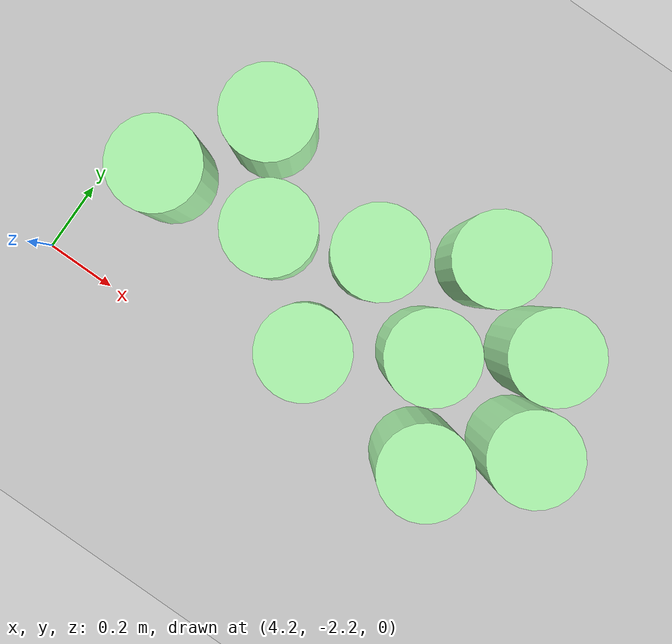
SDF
<sdf version="1.7">
 <world name="default">
  <model name="ground_plane">
   <static>1</static>
   <link name="link">
    <collision name="collision">
     <geometry><plane><normal>0 0 1</normal><size>100 100</size></plane></geometry>
     <surface><friction><ode><mu>100</mu><mu2>50</mu2></ode></friction></surface>
    </collision>
    <visual name="visual">
     <cast_shadows>0</cast_shadows>
     <geometry><plane><normal>0 0 1</normal><size>100 100</size></plane></geometry>
     <material>
      <script><uri>file://media/materials/scripts/gazebo.material</uri><name>Gazebo/Grey</name></script>
     </material>
    </visual>
   </link>
  </model>
  <model name="mhz_y_25_30_clone_29_clone_clone_clone_1_clone_2_clone_8">
   <link name="link">
    <inertial>
     <mass>1</mass>
     <inertia><ixx>0.145833</ixx><ixy>0</ixy><ixz>0</ixz><iyy>0.145833</iyy><iyz>0</iyz><izz>0.125</izz></inertia>
    </inertial>
    <visual name="visual">
     <geometry><cylinder><radius>0.125</radius><length>0.3</length></cylinder></geometry>
     <material>
      <script><name>Gazebo/Grey</name><uri>file://media/materials/scripts/gazebo.material</uri></script>
      <shader type="pixel"><normal_map>__default__</normal_map></shader>
      <ambient>0 1 0 0</ambient>
      <diffuse>0.7 1 0.7 1</diffuse>
      <specular>0.01 0.01 0.01 1</specular>
      <emissive>0 0 0 1</emissive>
     </material>
    </visual>
    <collision name="collision">
     <geometry><cylinder><radius>0.125</radius><length>0.3</length></cylinder></geometry>
     <surface>
      <friction>
       <ode><mu>1</mu><mu2>1</mu2><fdir1>0 0 0</fdir1><slip1>0</slip1><slip2>0</slip2></ode>
       <torsional>
        <coefficient>1</coefficient>
        <patch_radius>0</patch_radius>
        <surface_radius>0</surface_radius>
        <use_patch_radius>1</use_patch_radius>
        <ode><slip>0</slip></ode>
       </torsional>
      </friction>
      <bounce><restitution_coefficient>0</restitution_coefficient><threshold>1e+06</threshold></bounce>
      <contact>
       <collide_without_contact>0</collide_without_contact>
       <collide_without_contact_bitmask>1</collide_without_contact_bitmask>
       <collide_bitmask>1</collide_bitmask>
       <ode>
        <soft_cfm>0</soft_cfm>
        <soft_erp>0.2</soft_erp>
        <kp>1e+13</kp>
        <kd>1</kd>
        <max_vel>0.01</max_vel>
        <min_depth>0</min_depth>
       </ode>
       <bullet>
        <split_impulse>1</split_impulse>
        <split_impulse_penetration_threshold>-0.01</split_impulse_penetration_threshold>
        <soft_cfm>0</soft_cfm>
        <soft_erp>0.2</soft_erp>
        <kp>1e+13</kp>
        <kd>1</kd>
       </bullet>
      </contact>
     </surface>
    </collision>
   </link>
   <static>1</static>
   <pose>4.37547 -1.85 0.14679 0 -0 0</pose>
  </model>
  <model name="mhz_y_25_30_clone_29_clone_clone_clone_1_clone_2_clone_8_clone_0">
   <link name="link">
    <inertial>
     <mass>1</mass>
     <inertia><ixx>0.145833</ixx><ixy>0</ixy><ixz>0</ixz><iyy>0.145833</iyy><iyz>0</iyz><izz>0.125</izz></inertia>
    </inertial>
    <visual name="visual">
     <geometry><cylinder><radius>0.125</radius><length>0.3</length></cylinder></geometry>
     <material>
      <script><name>Gazebo/Grey</name><uri>file://media/materials/scripts/gazebo.material</uri></script>
      <shader type="pixel"><normal_map>__default__</normal_map></shader>
      <ambient>0 1 0 0</ambient>
      <diffuse>0.7 1 0.7 1</diffuse>
      <specular>0.01 0.01 0.01 1</specular>
      <emissive>0 0 0 1</emissive>
     </material>
    </visual>
    <collision name="collision">
     <geometry><cylinder><radius>0.125</radius><length>0.3</length></cylinder></geometry>
     <surface>
      <friction>
       <ode><mu>1</mu><mu2>1</mu2><fdir1>0 0 0</fdir1><slip1>0</slip1><slip2>0</slip2></ode>
       <torsional>
        <coefficient>1</coefficient>
        <patch_radius>0</patch_radius>
        <surface_radius>0</surface_radius>
        <use_patch_radius>1</use_patch_radius>
        <ode><slip>0</slip></ode>
       </torsional>
      </friction>
      <bounce><restitution_coefficient>0</restitution_coefficient><threshold>1e+06</threshold></bounce>
      <contact>
       <collide_without_contact>0</collide_without_contact>
       <collide_without_contact_bitmask>1</collide_without_contact_bitmask>
       <collide_bitmask>1</collide_bitmask>
       <ode>
        <soft_cfm>0</soft_cfm>
        <soft_erp>0.2</soft_erp>
        <kp>1e+13</kp>
        <kd>1</kd>
        <max_vel>0.01</max_vel>
        <min_depth>0</min_depth>
       </ode>
       <bullet>
        <split_impulse>1</split_impulse>
        <split_impulse_penetration_threshold>-0.01</split_impulse_penetration_threshold>
        <soft_cfm>0</soft_cfm>
        <soft_erp>0.2</soft_erp>
        <kp>1e+13</kp>
        <kd>1</kd>
       </bullet>
      </contact>
     </surface>
    </collision>
   </link>
   <static>1</static>
   <pose>4.69976 -1.81749 0.14679 0 -0 0</pose>
  </model>
  <model name="mhz_y_25_30_clone_29_clone_clone_clone_1_clone_2_clone_8_clone_1_clone">
   <link name="link">
    <inertial>
     <mass>1</mass>
     <inertia><ixx>0.145833</ixx><ixy>0</ixy><ixz>0</ixz><iyy>0.145833</iyy><iyz>0</iyz><izz>0.125</izz></inertia>
    </inertial>
    <visual name="visual">
     <geometry><cylinder><radius>0.125</radius><length>0.3</length></cylinder></geometry>
     <material>
      <script><name>Gazebo/Grey</name><uri>file://media/materials/scripts/gazebo.material</uri></script>
      <shader type="pixel"><normal_map>__default__</normal_map></shader>
      <ambient>0 1 0 0</ambient>
      <diffuse>0.7 1 0.7 1</diffuse>
      <specular>0.01 0.01 0.01 1</specular>
      <emissive>0 0 0 1</emissive>
     </material>
    </visual>
    <collision name="collision">
     <geometry><cylinder><radius>0.125</radius><length>0.3</length></cylinder></geometry>
     <surface>
      <friction>
       <ode><mu>1</mu><mu2>1</mu2><fdir1>0 0 0</fdir1><slip1>0</slip1><slip2>0</slip2></ode>
       <torsional>
        <coefficient>1</coefficient>
        <patch_radius>0</patch_radius>
        <surface_radius>0</surface_radius>
        <use_patch_radius>1</use_patch_radius>
        <ode><slip>0</slip></ode>
       </torsional>
      </friction>
      <bounce><restitution_coefficient>0</restitution_coefficient><threshold>1e+06</threshold></bounce>
      <contact>
       <collide_without_contact>0</collide_without_contact>
       <collide_without_contact_bitmask>1</collide_without_contact_bitmask>
       <collide_bitmask>1</collide_bitmask>
       <ode>
        <soft_cfm>0</soft_cfm>
        <soft_erp>0.2</soft_erp>
        <kp>1e+13</kp>
        <kd>1</kd>
        <max_vel>0.01</max_vel>
        <min_depth>0</min_depth>
       </ode>
       <bullet>
        <split_impulse>1</split_impulse>
        <split_impulse_penetration_threshold>-0.01</split_impulse_penetration_threshold>
        <soft_cfm>0</soft_cfm>
        <soft_erp>0.2</soft_erp>
        <kp>1e+13</kp>
        <kd>1</kd>
       </bullet>
      </contact>
     </surface>
    </collision>
   </link>
   <static>1</static>
   <pose>4.94595 -2.02138 0.14679 0 -0 0</pose>
  </model>
  <model name="mhz_y_25_30_clone_29_clone_clone_clone_1_clone_2_clone_8_clone_1_clone_0">
   <link name="link">
    <inertial>
     <mass>1</mass>
     <inertia><ixx>0.145833</ixx><ixy>0</ixy><ixz>0</ixz><iyy>0.145833</iyy><iyz>0</iyz><izz>0.125</izz></inertia>
    </inertial>
    <visual name="visual">
     <geometry><cylinder><radius>0.125</radius><length>0.3</length></cylinder></geometry>
     <material>
      <script><name>Gazebo/Grey</name><uri>file://media/materials/scripts/gazebo.material</uri></script>
      <shader type="pixel"><normal_map>__default__</normal_map></shader>
      <ambient>0 1 0 0</ambient>
      <diffuse>0.7 1 0.7 1</diffuse>
      <specular>0.01 0.01 0.01 1</specular>
      <emissive>0 0 0 1</emissive>
     </material>
    </visual>
    <collision name="collision">
     <geometry><cylinder><radius>0.125</radius><length>0.3</length></cylinder></geometry>
     <surface>
      <friction>
       <ode><mu>1</mu><mu2>1</mu2><fdir1>0 0 0</fdir1><slip1>0</slip1><slip2>0</slip2></ode>
       <torsional>
        <coefficient>1</coefficient>
        <patch_radius>0</patch_radius>
        <surface_radius>0</surface_radius>
        <use_patch_radius>1</use_patch_radius>
        <ode><slip>0</slip></ode>
       </torsional>
      </friction>
      <bounce><restitution_coefficient>0</restitution_coefficient><threshold>1e+06</threshold></bounce>
      <contact>
       <collide_without_contact>0</collide_without_contact>
       <collide_without_contact_bitmask>1</collide_without_contact_bitmask>
       <collide_bitmask>1</collide_bitmask>
       <ode>
        <soft_cfm>0</soft_cfm>
        <soft_erp>0.2</soft_erp>
        <kp>1e+13</kp>
        <kd>1</kd>
        <max_vel>0.01</max_vel>
        <min_depth>0</min_depth>
       </ode>
       <bullet>
        <split_impulse>1</split_impulse>
        <split_impulse_penetration_threshold>-0.01</split_impulse_penetration_threshold>
        <soft_cfm>0</soft_cfm>
        <soft_erp>0.2</soft_erp>
        <kp>1e+13</kp>
        <kd>1</kd>
       </bullet>
      </contact>
     </surface>
    </collision>
   </link>
   <static>1</static>
   <pose>4.95977 -1.70879 0.14679 0 -0 0</pose>
  </model>
  <model name="mhz_y_25_30_clone_29_clone_clone_clone_1_clone_2_clone_8_clone_0_clone">
   <link name="link">
    <inertial>
     <mass>1</mass>
     <inertia><ixx>0.145833</ixx><ixy>0</ixy><ixz>0</ixz><iyy>0.145833</iyy><iyz>0</iyz><izz>0.125</izz></inertia>
    </inertial>
    <visual name="visual">
     <geometry><cylinder><radius>0.125</radius><length>0.3</length></cylinder></geometry>
     <material>
      <script><name>Gazebo/Grey</name><uri>file://media/materials/scripts/gazebo.material</uri></script>
      <shader type="pixel"><normal_map>__default__</normal_map></shader>
      <ambient>0 1 0 0</ambient>
      <diffuse>0.7 1 0.7 1</diffuse>
      <specular>0.01 0.01 0.01 1</specular>
      <emissive>0 0 0 1</emissive>
     </material>
    </visual>
    <collision name="collision">
     <geometry><cylinder><radius>0.125</radius><length>0.3</length></cylinder></geometry>
     <surface>
      <friction>
       <ode><mu>1</mu><mu2>1</mu2><fdir1>0 0 0</fdir1><slip1>0</slip1><slip2>0</slip2></ode>
       <torsional>
        <coefficient>1</coefficient>
        <patch_radius>0</patch_radius>
        <surface_radius>0</surface_radius>
        <use_patch_radius>1</use_patch_radius>
        <ode><slip>0</slip></ode>
       </torsional>
      </friction>
      <bounce><restitution_coefficient>0</restitution_coefficient><threshold>1e+06</threshold></bounce>
      <contact>
       <collide_without_contact>0</collide_without_contact>
       <collide_without_contact_bitmask>1</collide_without_contact_bitmask>
       <collide_bitmask>1</collide_bitmask>
       <ode>
        <soft_cfm>0</soft_cfm>
        <soft_erp>0.2</soft_erp>
        <kp>1e+13</kp>
        <kd>1</kd>
        <max_vel>0.01</max_vel>
        <min_depth>0</min_depth>
       </ode>
       <bullet>
        <split_impulse>1</split_impulse>
        <split_impulse_penetration_threshold>-0.01</split_impulse_penetration_threshold>
        <soft_cfm>0</soft_cfm>
        <soft_erp>0.2</soft_erp>
        <kp>1e+13</kp>
        <kd>1</kd>
       </bullet>
      </contact>
     </surface>
    </collision>
   </link>
   <static>1</static>
   <pose>4.53461 -1.5845 0.14679 0 -0 0</pose>
  </model>
  <model name="mhz_y_25_30_clone_29_clone_clone_clone_1_clone_2_clone_8_clone_clone_clone">
   <link name="link">
    <inertial>
     <mass>1</mass>
     <inertia><ixx>0.145833</ixx><ixy>0</ixy><ixz>0</ixz><iyy>0.145833</iyy><iyz>0</iyz><izz>0.125</izz></inertia>
    </inertial>
    <visual name="visual">
     <geometry><cylinder><radius>0.125</radius><length>0.3</length></cylinder></geometry>
     <material>
      <script><name>Gazebo/Grey</name><uri>file://media/materials/scripts/gazebo.material</uri></script>
      <shader type="pixel"><normal_map>__default__</normal_map></shader>
      <ambient>0 1 0 0</ambient>
      <diffuse>0.7 1 0.7 1</diffuse>
      <specular>0.01 0.01 0.01 1</specular>
      <emissive>0 0 0 1</emissive>
     </material>
    </visual>
    <collision name="collision">
     <geometry><cylinder><radius>0.125</radius><length>0.3</length></cylinder></geometry>
     <surface>
      <friction>
       <ode><mu>1</mu><mu2>1</mu2><fdir1>0 0 0</fdir1><slip1>0</slip1><slip2>0</slip2></ode>
       <torsional>
        <coefficient>1</coefficient>
        <patch_radius>0</patch_radius>
        <surface_radius>0</surface_radius>
        <use_patch_radius>1</use_patch_radius>
        <ode><slip>0</slip></ode>
       </torsional>
      </friction>
      <bounce><restitution_coefficient>0</restitution_coefficient><threshold>1e+06</threshold></bounce>
      <contact>
       <collide_without_contact>0</collide_without_contact>
       <collide_without_contact_bitmask>1</collide_without_contact_bitmask>
       <collide_bitmask>1</collide_bitmask>
       <ode>
        <soft_cfm>0</soft_cfm>
        <soft_erp>0.2</soft_erp>
        <kp>1e+13</kp>
        <kd>1</kd>
        <max_vel>0.01</max_vel>
        <min_depth>0</min_depth>
       </ode>
       <bullet>
        <split_impulse>1</split_impulse>
        <split_impulse_penetration_threshold>-0.01</split_impulse_penetration_threshold>
        <soft_cfm>0</soft_cfm>
        <soft_erp>0.2</soft_erp>
        <kp>1e+13</kp>
        <kd>1</kd>
       </bullet>
      </contact>
     </surface>
    </collision>
   </link>
   <static>1</static>
   <pose>5.21703 -1.84701 0.14679 0 -0 0</pose>
  </model>
  <model name="mhz_y_25_30_clone_29_clone_clone_clone_1_clone_2_clone_8_clone_clone_clone_0">
   <link name="link">
    <inertial>
     <mass>1</mass>
     <inertia><ixx>0.145833</ixx><ixy>0</ixy><ixz>0</ixz><iyy>0.145833</iyy><iyz>0</iyz><izz>0.125</izz></inertia>
    </inertial>
    <visual name="visual">
     <geometry><cylinder><radius>0.125</radius><length>0.3</length></cylinder></geometry>
     <material>
      <script><name>Gazebo/Grey</name><uri>file://media/materials/scripts/gazebo.material</uri></script>
      <shader type="pixel"><normal_map>__default__</normal_map></shader>
      <ambient>0 1 0 0</ambient>
      <diffuse>0.7 1 0.7 1</diffuse>
      <specular>0.01 0.01 0.01 1</specular>
      <emissive>0 0 0 1</emissive>
     </material>
    </visual>
    <collision name="collision">
     <geometry><cylinder><radius>0.125</radius><length>0.3</length></cylinder></geometry>
     <surface>
      <friction>
       <ode><mu>1</mu><mu2>1</mu2><fdir1>0 0 0</fdir1><slip1>0</slip1><slip2>0</slip2></ode>
       <torsional>
        <coefficient>1</coefficient>
        <patch_radius>0</patch_radius>
        <surface_radius>0</surface_radius>
        <use_patch_radius>1</use_patch_radius>
        <ode><slip>0</slip></ode>
       </torsional>
      </friction>
      <bounce><restitution_coefficient>0</restitution_coefficient><threshold>1e+06</threshold></bounce>
      <contact>
       <collide_without_contact>0</collide_without_contact>
       <collide_without_contact_bitmask>1</collide_without_contact_bitmask>
       <collide_bitmask>1</collide_bitmask>
       <ode>
        <soft_cfm>0</soft_cfm>
        <soft_erp>0.2</soft_erp>
        <kp>1e+13</kp>
        <kd>1</kd>
        <max_vel>0.01</max_vel>
        <min_depth>0</min_depth>
       </ode>
       <bullet>
        <split_impulse>1</split_impulse>
        <split_impulse_penetration_threshold>-0.01</split_impulse_penetration_threshold>
        <soft_cfm>0</soft_cfm>
        <soft_erp>0.2</soft_erp>
        <kp>1e+13</kp>
        <kd>1</kd>
       </bullet>
      </contact>
     </surface>
    </collision>
   </link>
   <static>1</static>
   <pose>5.36451 -2.09111 0.14679 0 -0 0</pose>
  </model>
  <model name="mhz_y_25_30_clone_29_clone_clone_clone_1_clone_2_clone_8_clone_clone_clone_0_clone">
   <link name="link">
    <inertial>
     <mass>1</mass>
     <inertia><ixx>0.145833</ixx><ixy>0</ixy><ixz>0</ixz><iyy>0.145833</iyy><iyz>0</iyz><izz>0.125</izz></inertia>
    </inertial>
    <visual name="visual">
     <geometry><cylinder><radius>0.125</radius><length>0.3</length></cylinder></geometry>
     <material>
      <script><name>Gazebo/Grey</name><uri>file://media/materials/scripts/gazebo.material</uri></script>
      <shader type="pixel"><normal_map>__default__</normal_map></shader>
      <ambient>0 1 0 0</ambient>
      <diffuse>0.7 1 0.7 1</diffuse>
      <specular>0.01 0.01 0.01 1</specular>
      <emissive>0 0 0 1</emissive>
     </material>
    </visual>
    <collision name="collision">
     <geometry><cylinder><radius>0.125</radius><length>0.3</length></cylinder></geometry>
     <surface>
      <friction>
       <ode><mu>1</mu><mu2>1</mu2><fdir1>0 0 0</fdir1><slip1>0</slip1><slip2>0</slip2></ode>
       <torsional>
        <coefficient>1</coefficient>
        <patch_radius>0</patch_radius>
        <surface_radius>0</surface_radius>
        <use_patch_radius>1</use_patch_radius>
        <ode><slip>0</slip></ode>
       </torsional>
      </friction>
      <bounce><restitution_coefficient>0</restitution_coefficient><threshold>1e+06</threshold></bounce>
      <contact>
       <collide_without_contact>0</collide_without_contact>
       <collide_without_contact_bitmask>1</collide_without_contact_bitmask>
       <collide_bitmask>1</collide_bitmask>
       <ode>
        <soft_cfm>0</soft_cfm>
        <soft_erp>0.2</soft_erp>
        <kp>1e+13</kp>
        <kd>1</kd>
        <max_vel>0.01</max_vel>
        <min_depth>0</min_depth>
       </ode>
       <bullet>
        <split_impulse>1</split_impulse>
        <split_impulse_penetration_threshold>-0.01</split_impulse_penetration_threshold>
        <soft_cfm>0</soft_cfm>
        <soft_erp>0.2</soft_erp>
        <kp>1e+13</kp>
        <kd>1</kd>
       </bullet>
      </contact>
     </surface>
    </collision>
   </link>
   <static>1</static>
   <pose>5.21488 -1.55136 0.14679 0 -0 0</pose>
  </model>
  <model name="mhz_y_25_30_clone_29_clone_clone_clone_1_clone_2_clone_8_clone_clone_clone_0_clone_0">
   <link name="link">
    <inertial>
     <mass>1</mass>
     <inertia><ixx>0.145833</ixx><ixy>0</ixy><ixz>0</ixz><iyy>0.145833</iyy><iyz>0</iyz><izz>0.125</izz></inertia>
    </inertial>
    <visual name="visual">
     <geometry><cylinder><radius>0.125</radius><length>0.3</length></cylinder></geometry>
     <material>
      <script><name>Gazebo/Grey</name><uri>file://media/materials/scripts/gazebo.material</uri></script>
      <shader type="pixel"><normal_map>__default__</normal_map></shader>
      <ambient>0 1 0 0</ambient>
      <diffuse>0.7 1 0.7 1</diffuse>
      <specular>0.01 0.01 0.01 1</specular>
      <emissive>0 0 0 1</emissive>
     </material>
    </visual>
    <collision name="collision">
     <geometry><cylinder><radius>0.125</radius><length>0.3</length></cylinder></geometry>
     <surface>
      <friction>
       <ode><mu>1</mu><mu2>1</mu2><fdir1>0 0 0</fdir1><slip1>0</slip1><slip2>0</slip2></ode>
       <torsional>
        <coefficient>1</coefficient>
        <patch_radius>0</patch_radius>
        <surface_radius>0</surface_radius>
        <use_patch_radius>1</use_patch_radius>
        <ode><slip>0</slip></ode>
       </torsional>
      </friction>
      <bounce><restitution_coefficient>0</restitution_coefficient><threshold>1e+06</threshold></bounce>
      <contact>
       <collide_without_contact>0</collide_without_contact>
       <collide_without_contact_bitmask>1</collide_without_contact_bitmask>
       <collide_bitmask>1</collide_bitmask>
       <ode>
        <soft_cfm>0</soft_cfm>
        <soft_erp>0.2</soft_erp>
        <kp>1e+13</kp>
        <kd>1</kd>
        <max_vel>0.01</max_vel>
        <min_depth>0</min_depth>
       </ode>
       <bullet>
        <split_impulse>1</split_impulse>
        <split_impulse_penetration_threshold>-0.01</split_impulse_penetration_threshold>
        <soft_cfm>0</soft_cfm>
        <soft_erp>0.2</soft_erp>
        <kp>1e+13</kp>
        <kd>1</kd>
       </bullet>
      </contact>
     </surface>
    </collision>
   </link>
   <static>1</static>
   <pose>5.46804 -1.67142 0.14679 0 -0 0</pose>
  </model>
  <model name="mhz_y_25_30_clone_29_clone_clone_clone_1_clone_2_clone_8_clone_clone_clone_0_clone_1">
   <link name="link">
    <inertial>
     <mass>1</mass>
     <inertia><ixx>0.145833</ixx><ixy>0</ixy><ixz>0</ixz><iyy>0.145833</iyy><iyz>0</iyz><izz>0.125</izz></inertia>
    </inertial>
    <visual name="visual">
     <geometry><cylinder><radius>0.125</radius><length>0.3</length></cylinder></geometry>
     <material>
      <script><name>Gazebo/Grey</name><uri>file://media/materials/scripts/gazebo.material</uri></script>
      <shader type="pixel"><normal_map>__default__</normal_map></shader>
      <ambient>0 1 0 0</ambient>
      <diffuse>0.7 1 0.7 1</diffuse>
      <specular>0.01 0.01 0.01 1</specular>
      <emissive>0 0 0 1</emissive>
     </material>
    </visual>
    <collision name="collision">
     <geometry><cylinder><radius>0.125</radius><length>0.3</length></cylinder></geometry>
     <surface>
      <friction>
       <ode><mu>1</mu><mu2>1</mu2><fdir1>0 0 0</fdir1><slip1>0</slip1><slip2>0</slip2></ode>
       <torsional>
        <coefficient>1</coefficient>
        <patch_radius>0</patch_radius>
        <surface_radius>0</surface_radius>
        <use_patch_radius>1</use_patch_radius>
        <ode><slip>0</slip></ode>
       </torsional>
      </friction>
      <bounce><restitution_coefficient>0</restitution_coefficient><threshold>1e+06</threshold></bounce>
      <contact>
       <collide_without_contact>0</collide_without_contact>
       <collide_without_contact_bitmask>1</collide_without_contact_bitmask>
       <collide_bitmask>1</collide_bitmask>
       <ode>
        <soft_cfm>0</soft_cfm>
        <soft_erp>0.2</soft_erp>
        <kp>1e+13</kp>
        <kd>1</kd>
        <max_vel>0.01</max_vel>
        <min_depth>0</min_depth>
       </ode>
       <bullet>
        <split_impulse>1</split_impulse>
        <split_impulse_penetration_threshold>-0.01</split_impulse_penetration_threshold>
        <soft_cfm>0</soft_cfm>
        <soft_erp>0.2</soft_erp>
        <kp>1e+13</kp>
        <kd>1</kd>
       </bullet>
      </contact>
     </surface>
    </collision>
   </link>
   <static>1</static>
   <pose>5.5689 -1.90748 0.14679 0 -0 0</pose>
  </model>
 </world>
</sdf>
